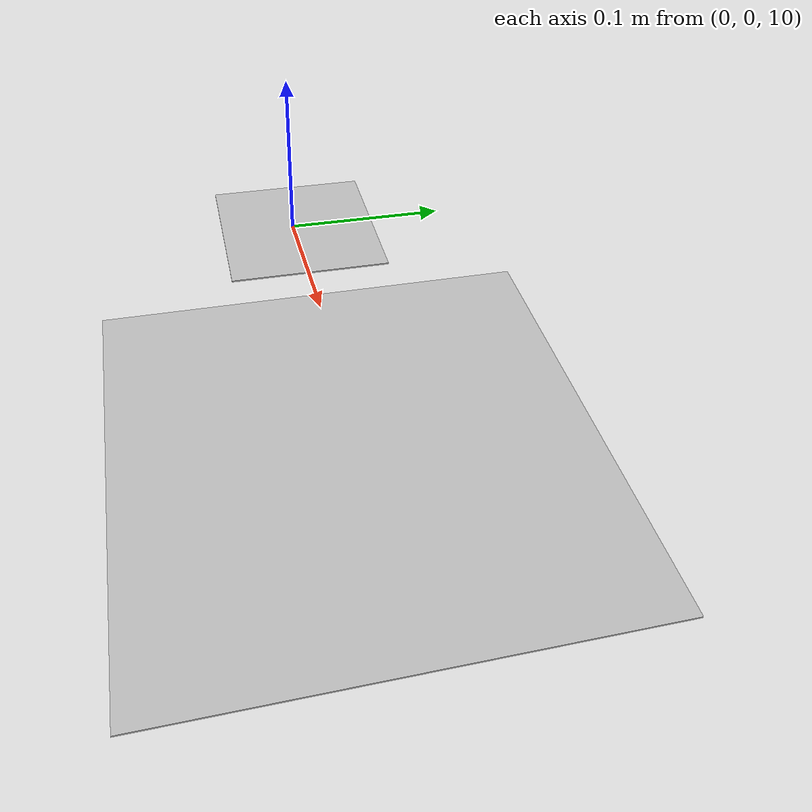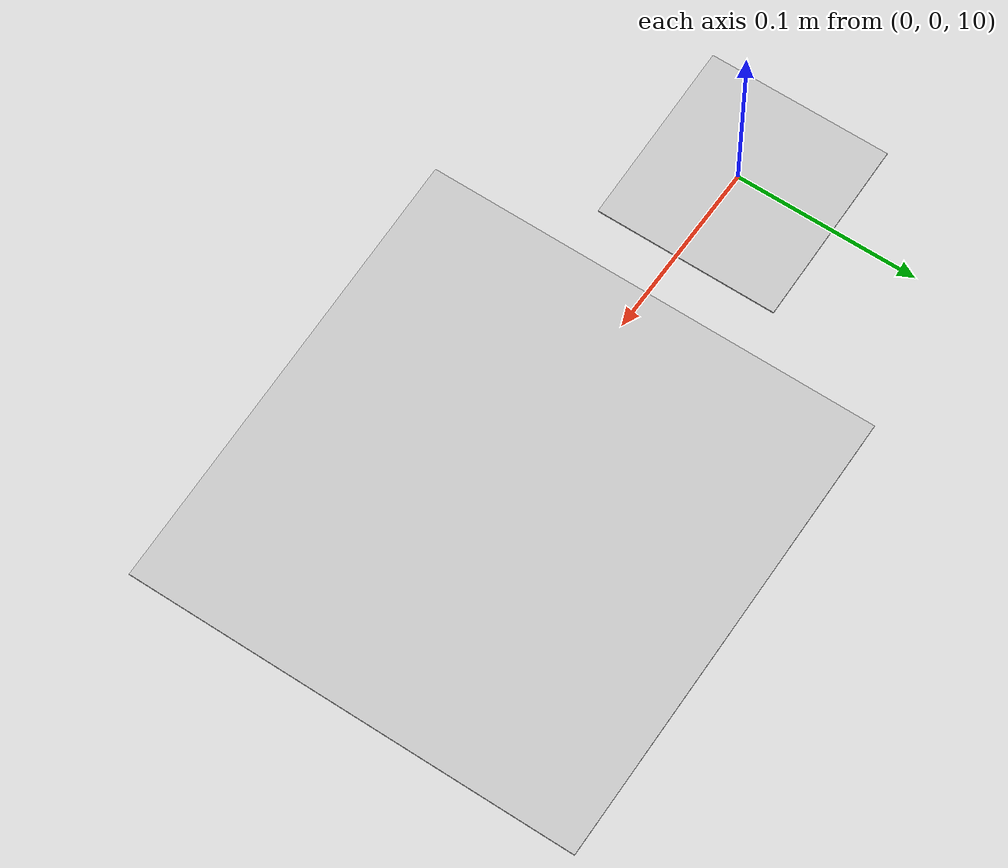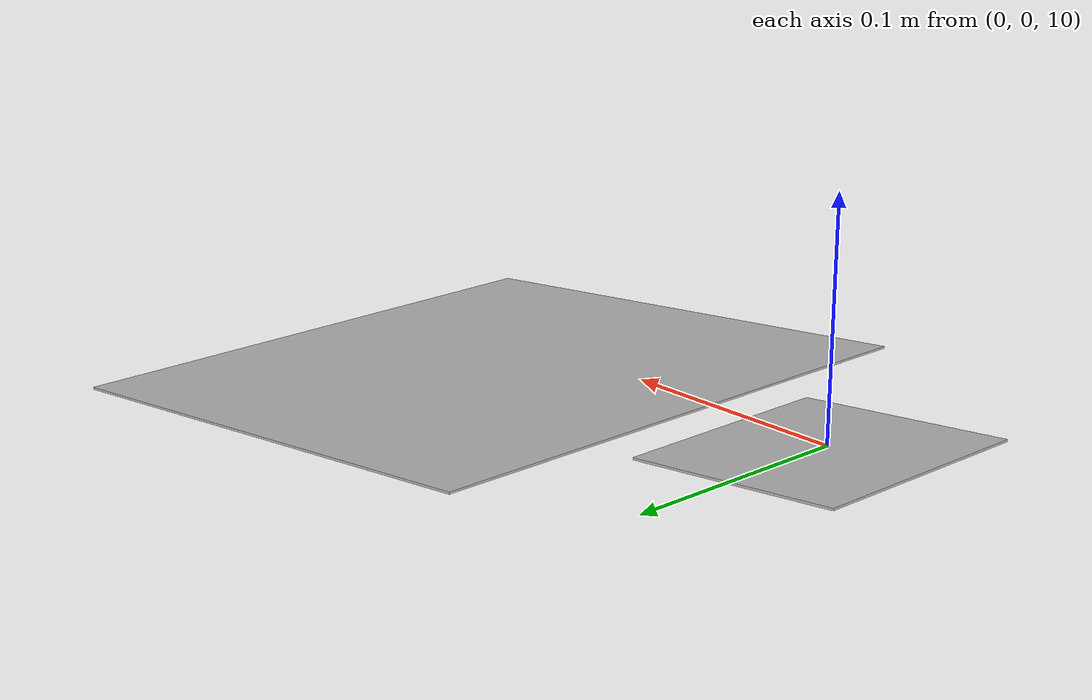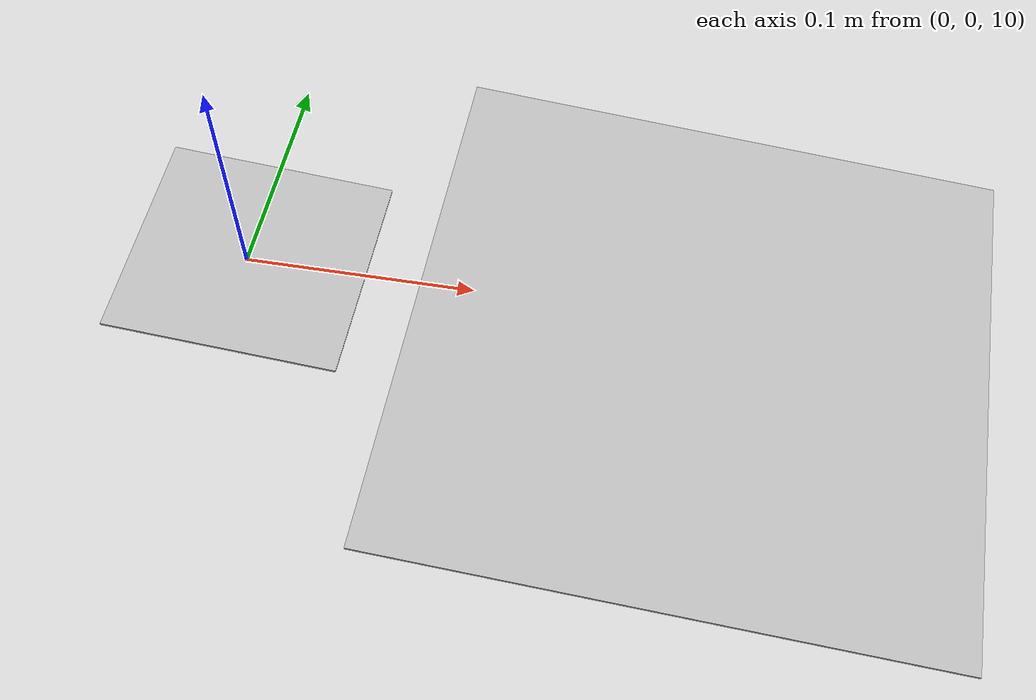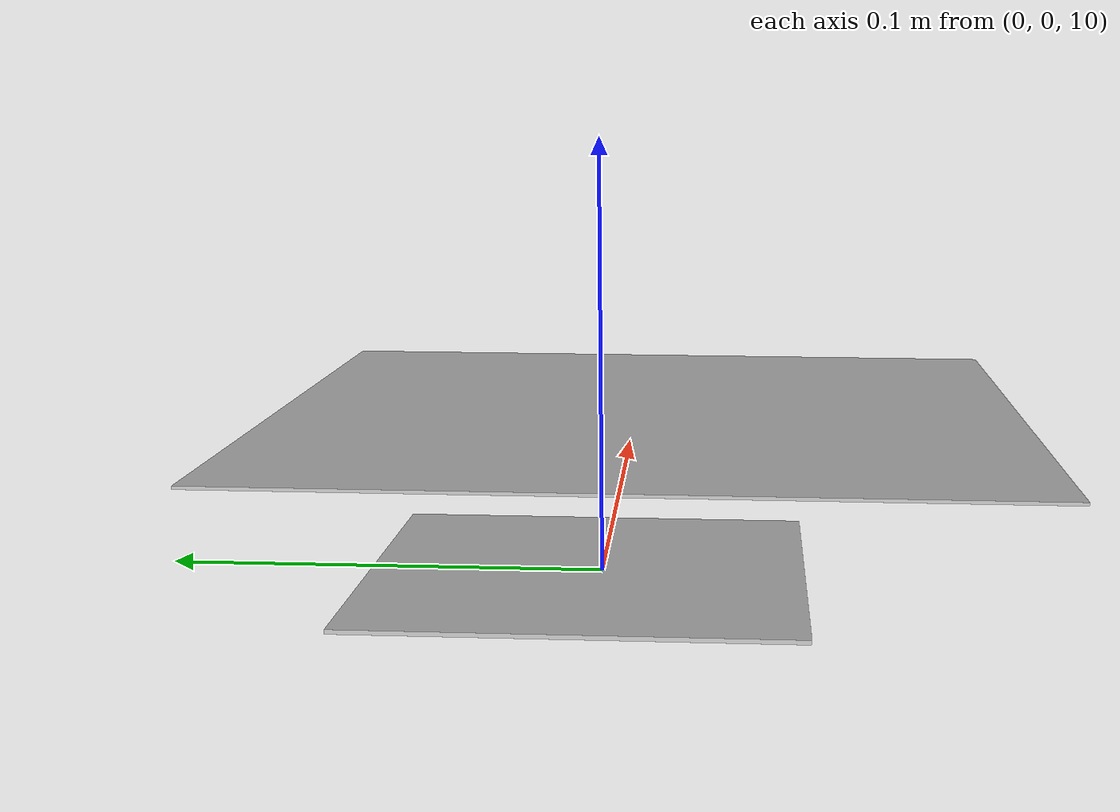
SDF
<?xml version="1.0" ?>
<sdf version="1.5">
  <world name="default">
    <!-- A global light source -->
    <include>
      <uri>model://sun</uri>
    </include>
    <include>
      <uri>model://sun_low</uri>
    </include>
    <!-- A ground plane -->
    <include>
      <uri>model://ground_plane</uri>
    </include>
    <include>
      <uri>model://asphalt_plane</uri>
    </include>
    <include>
      <uri>model://aruco_assembled_target</uri>
    </include>

    <physics name='default_physics' default='0' type='ode'>
      <gravity>0 0 -9.81</gravity>
      <ode>
        <solver>
          <type>quick</type>
          <iters>10</iters>
          <sor>1.3</sor>
          <use_dynamic_moi_rescaling>0</use_dynamic_moi_rescaling>
        </solver>
        <constraints>
          <cfm>0</cfm>
          <erp>0.2</erp>
          <contact_max_correcting_vel>100</contact_max_correcting_vel>
          <contact_surface_layer>0.001</contact_surface_layer>
        </constraints>
      </ode>
      <max_step_size>0.004</max_step_size>
      <real_time_factor>1</real_time_factor>
      <real_time_update_rate>250</real_time_update_rate>
      <magnetic_field>6.0e-6 2.3e-5 -4.2e-5</magnetic_field>
    </physics>

  </world>
</sdf>

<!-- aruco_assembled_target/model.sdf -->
<sdf version="1.5">
    <model name="mothership">
      <pose>0 0 10 0 0.10472 0</pose>
      <include>
        <uri>model://aruco_20_250</uri>
        <pose>0.2 0 0 0 0 0</pose>
      </include>
      <include>
        <uri>model://aruco_10_100</uri>
        <pose>0 0 0 0 0 0</pose>
      </include>

      <joint name="aruco1" type="fixed">
        <child>aruco_20_250</child>
        <parent>mothership</parent>
      </joint>

      <joint name="aruco2" type="fixed">
        <child>aruco_10_100</child>
        <parent>mothership</parent>
      </joint>

    <plugin name="model_push" filename="libmodel_push.so"/>

    </model>
</sdf>

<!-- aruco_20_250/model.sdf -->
<sdf version="1.5">
    <model name="Aruco_20_250">
      <pose>0 0 0 0 0 0</pose>
      <link name="Aruco_20_250">
        <visual name="visual">
          <geometry>
	     <mesh><uri>model://aruco_20_250/meshes/Aruco_2_20_250.dae</uri></mesh>
          </geometry>
        </visual>
      </link>
    </model>
</sdf>

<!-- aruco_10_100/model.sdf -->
<sdf version="1.5">
    <model name="Aruco_10_100">
      <pose>0 0 0 0 0 0</pose>
      <link name="Aruco_10_100">
        <visual name="visual">
          <geometry>
	     <mesh><uri>model://aruco_10_100/meshes/AR_one.dae</uri></mesh>
          </geometry>
        </visual>
      </link>
    </model>
</sdf>
